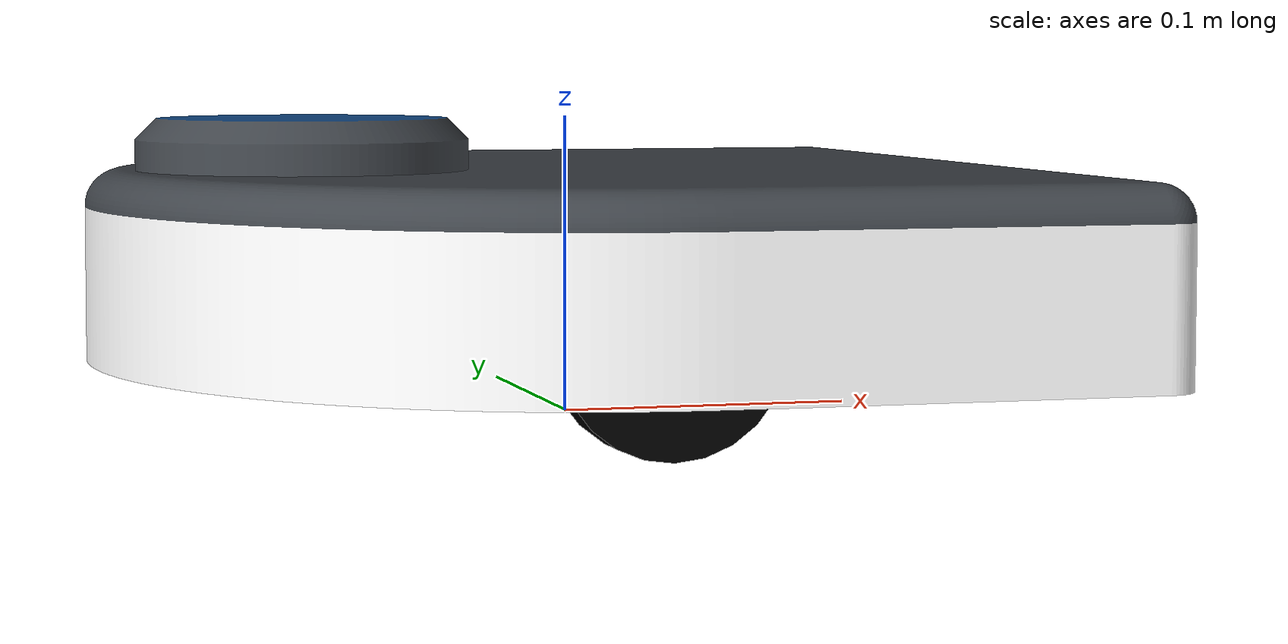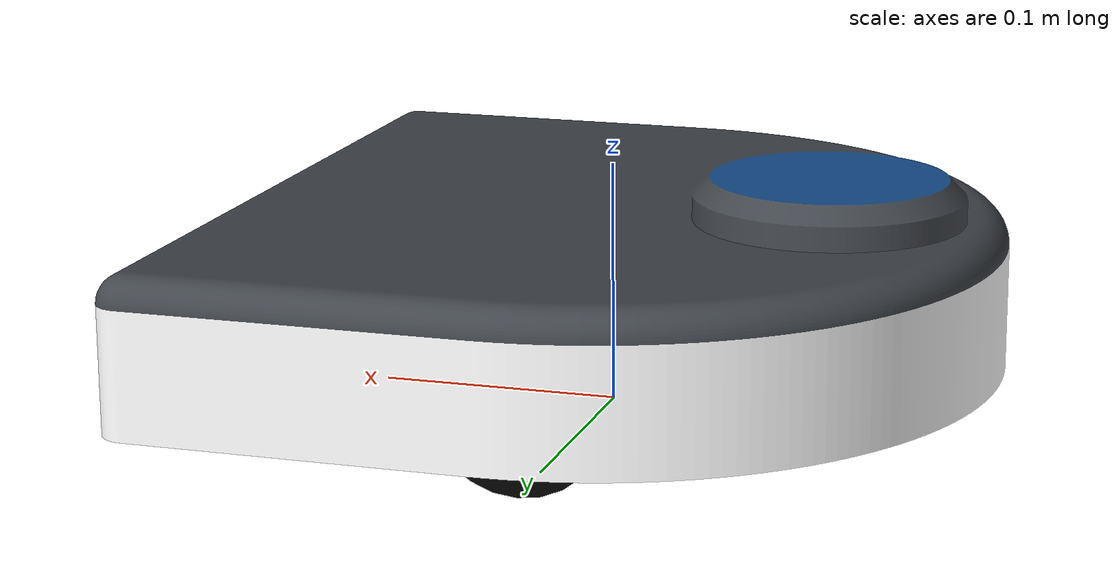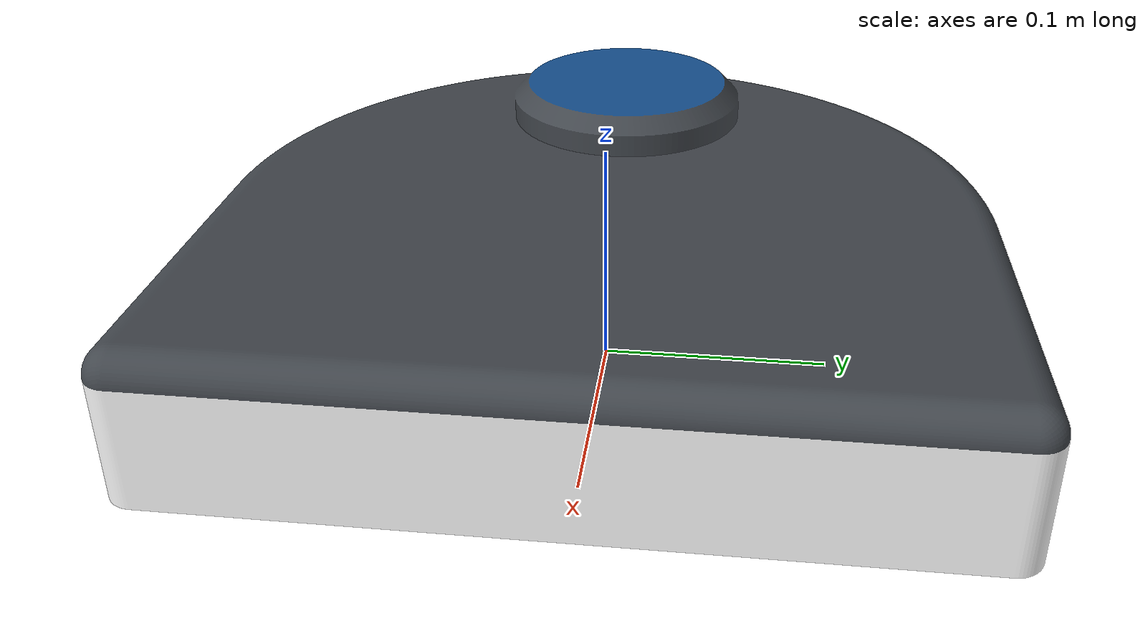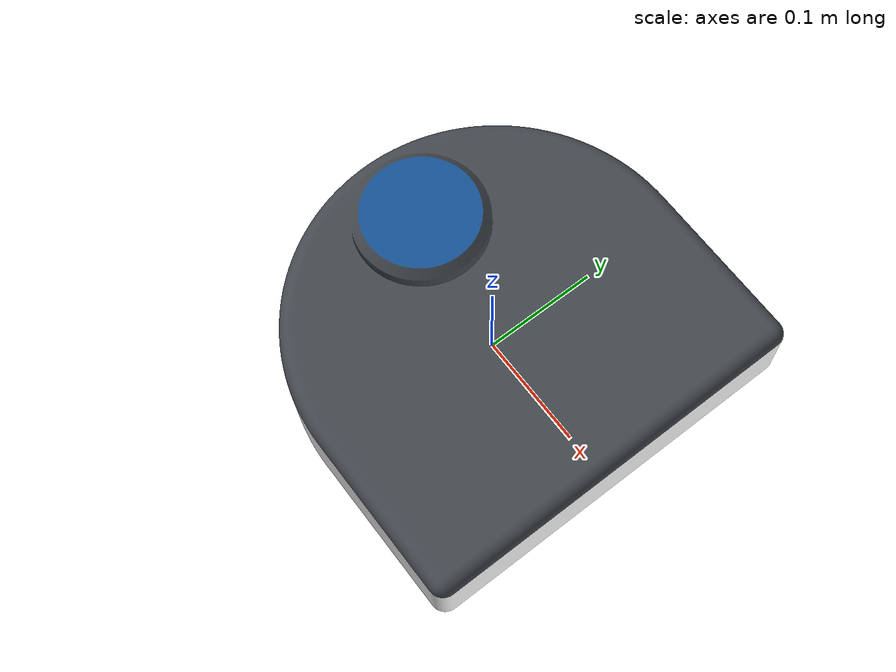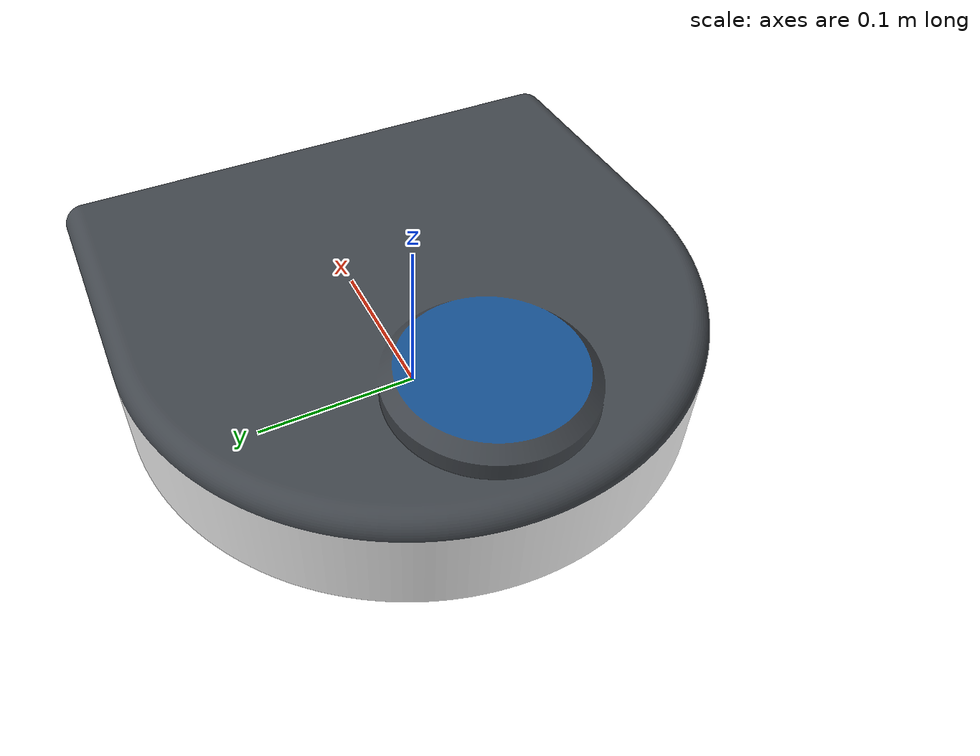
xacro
<?xml version="1.0"?>
<robot xmlns:xacro="http://ros.org/wiki/xacro" name="neato">

  <xacro:macro name="wheel" params="side">
    <link name="${side}_wheel_link">
    <visual>
      <origin xyz="0 0 0" rpy="0 0 0" />
      <geometry>
        <cylinder radius="0.0365" length="0.014"/>
      </geometry>
      <material name="Rubber">
        <color rgba="0 0 0 1"/>
      </material>
    </visual>
    <collision>
      <origin xyz="0 0 0" rpy="0 0 0"/>
      <geometry>
        <cylinder radius="0.0365" length="0.014"/>
      </geometry>
    </collision>
  </link>
  </xacro:macro>

  <link name="base_footprint">
  </link>

  <joint name="footprint_to_link" type="fixed">
    <parent link="base_footprint"/>
    <child link="base_link"/>
    <origin xyz="0 0 0.02" rpy="0 0 0" />
  </joint>

  <link name="base_link">
    <visual>
      <origin xyz="0 0 0" rpy="0 0 1.57" />
      <geometry>
        <mesh filename="package://neato_description/meshes/NeatoDSeries.dae" />
      </geometry>
    </visual>
  </link>

  <joint name="base_to_laser" type="fixed">
    <parent link="base_footprint"/>
    <child link="laser_link"/>
    <origin xyz="-0.1 0 0.0825" rpy="0 0 0" />
  </joint>

  <link name="laser_link"/>

  <joint name="base_to_left_wheel" type="fixed">
    <parent link="base_link"/>
    <child link="left_wheel_link"/>
    <origin xyz="0 ${0.243 / 2} 0.016" rpy="1.57 0 0" /> <!--wheel-to-wheel distance/2-->
  </joint>
  <joint name="base_to_right_wheel" type="fixed">
    <parent link="base_link"/>
    <child link="right_wheel_link"/>
    <origin xyz="0 -${0.243 / 2} 0.016" rpy="1.57 0 0" />
  </joint>

  <xacro:wheel side="left"/>
  <xacro:wheel side="right"/>

</robot>
